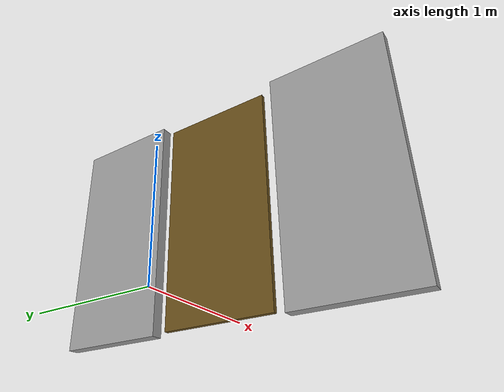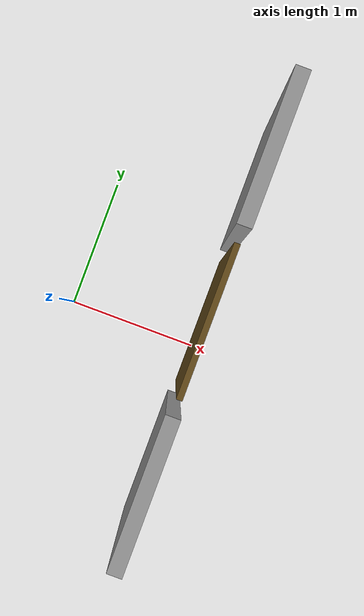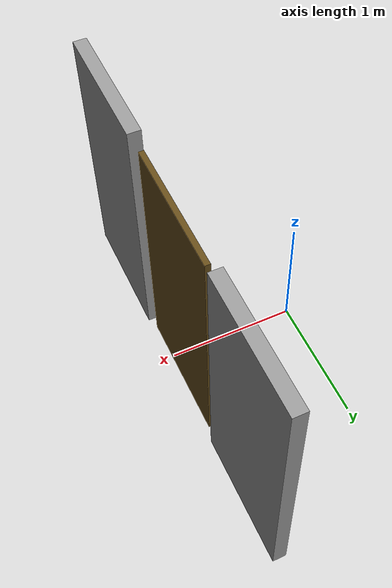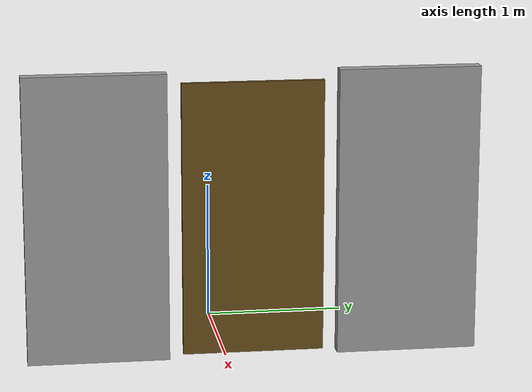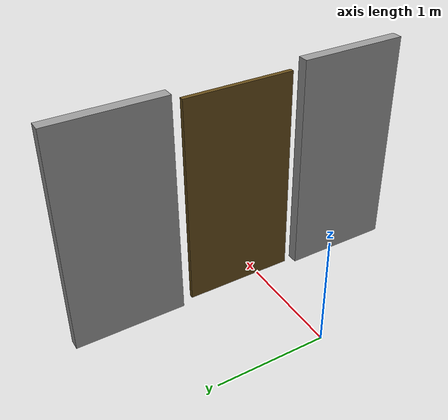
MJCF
<mujoco model="door_scene">
    <option gravity="0 0 -9.81" />
    <compiler angle="radian" />

    <worldbody>

        <body name="Wall" pos="1.0 0.2 0.0" quat="0 0 0 1">
            <geom name="wall_geom_right" type="box" size="0.05 0.5 1.025" pos="0 -1.1 1.025"
                rgba="0.6 0.6 0.6 1"
                contype="2" conaffinity="1"/>
            <geom name="wall_geom_left" type="box" size="0.05 0.5 1.025" pos="0 1.1 1.025"
                rgba="0.6 0.6 0.6 1"
                contype="2" conaffinity="1"/>

            <body name="Door" pos="0 0 0">
                <joint name="door_joint" type="hinge" pos="0 0.5 0" axis="0 0 1" range="-1.57 0"
                     springref="0" />
                <geom name="door_geom" type="box" size="0.02 0.5 0.975" pos="0 0 1"
                    rgba="0.4 0.3 0.1 1.0"
                    contype="2" conaffinity="1" mass="20.0" />
            </body>
        </body>
    </worldbody>

    <actuator>
        <motor name="door_joint" joint="door_joint" ctrllimited="true" ctrlrange="-100 100" />
    </actuator>

    <sensor>
    <!-- door sensors -->
    <framepos name="Door_pos" objtype="xbody" objname="Door" />
    <framequat name="Door_quat" objtype="xbody" objname="Door" />
    <framelinvel name="Door_linvel" objtype="xbody" objname="Door" />
    <frameangvel name="Door_angvel" objtype="xbody" objname="Door" />

    <!-- wall sensors -->
    <framepos name="Wall_pos" objtype="xbody" objname="Wall" />
    <framequat name="Wall_quat" objtype="xbody" objname="Wall" />
    <framelinvel name="Wall_linvel" objtype="xbody" objname="Wall" />
    <frameangvel name="Wall_angvel" objtype="xbody" objname="Wall" />
    </sensor>

</mujoco>
